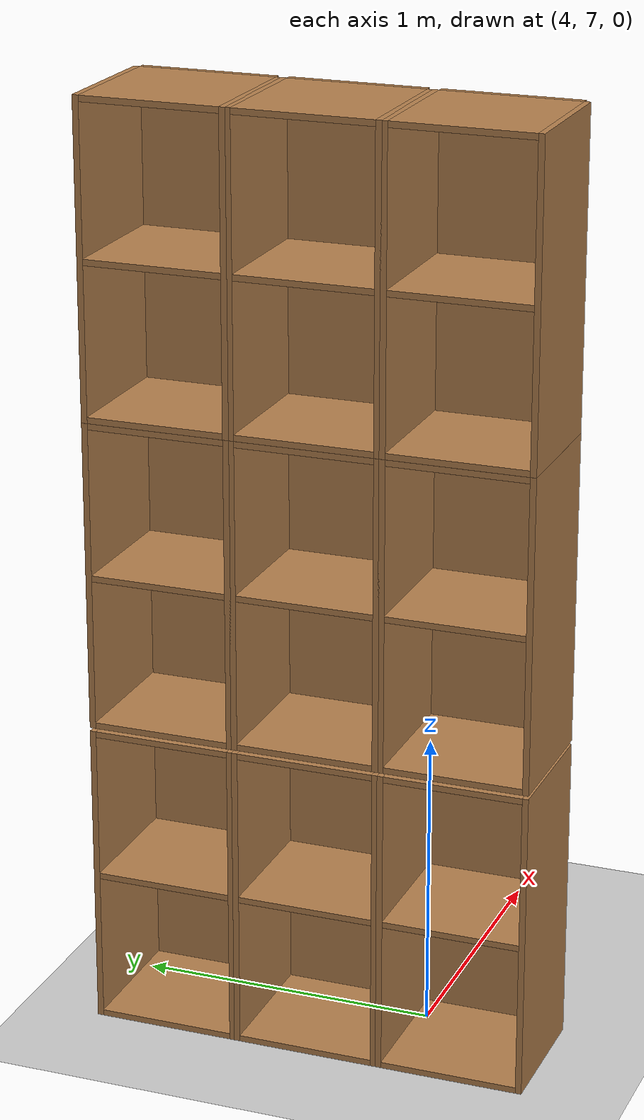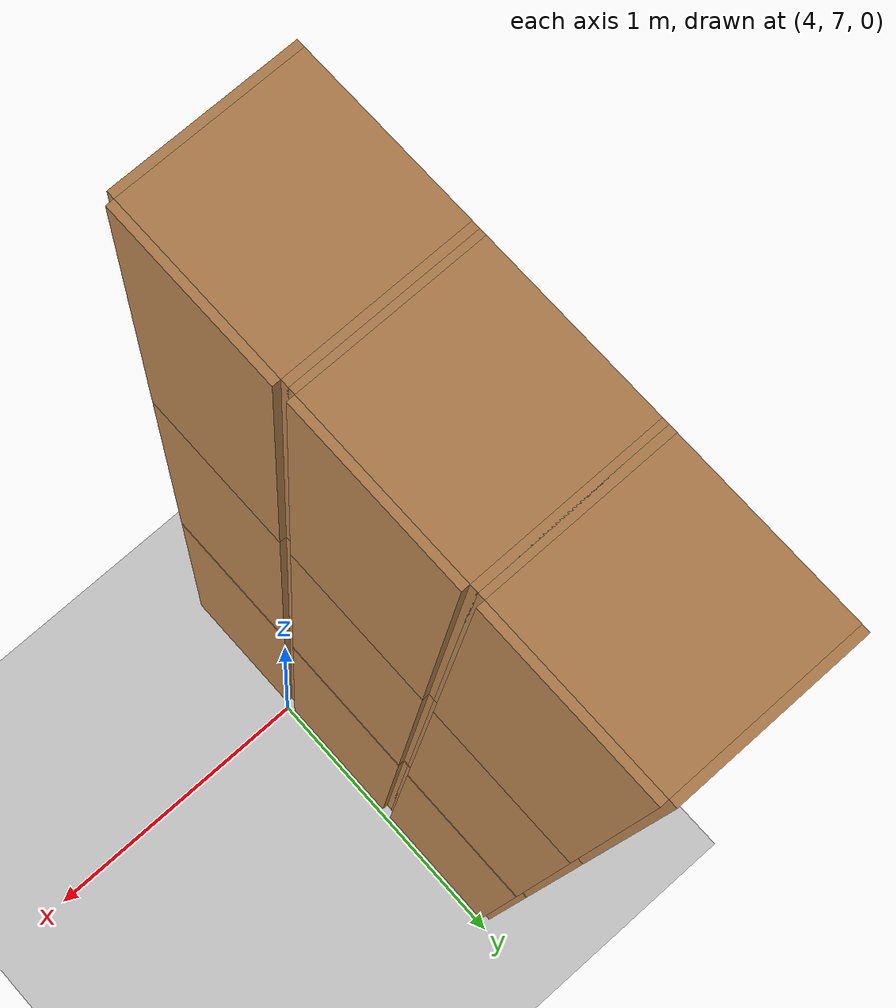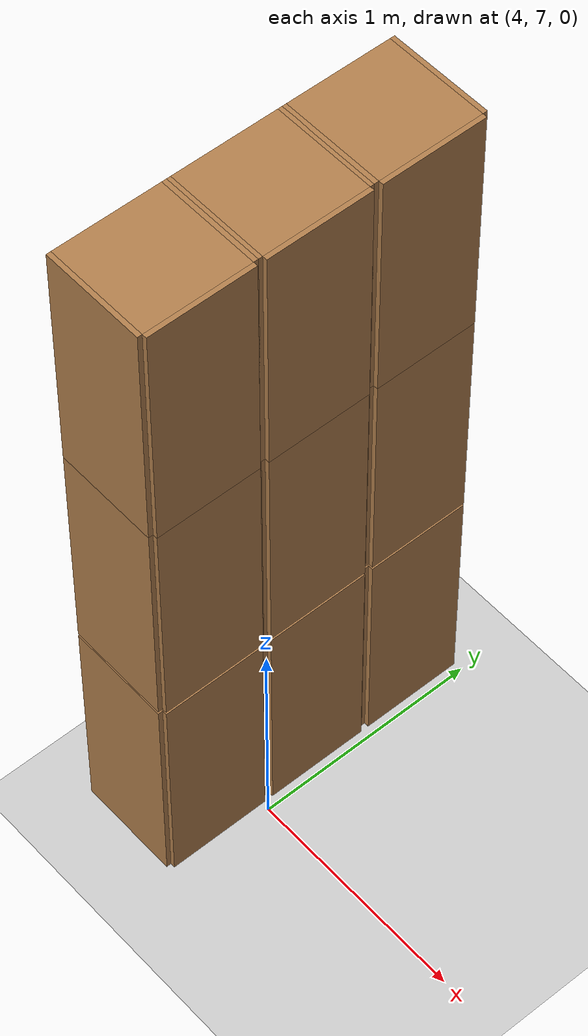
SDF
<sdf version="1.6">
 <world name="default">
  <model name="ground_plane">
   <static>1</static>
   <link name="link">
    <collision name="collision">
     <geometry><plane><normal>0 0 1</normal><size>100 100</size></plane></geometry>
     <surface>
      <contact><collide_bitmask>65535</collide_bitmask></contact>
      <friction><ode><mu>100</mu><mu2>50</mu2></ode></friction>
     </surface>
    </collision>
    <visual name="visual">
     <cast_shadows>0</cast_shadows>
     <geometry><plane><normal>0 0 1</normal><size>100 100</size></plane></geometry>
     <material>
      <script><uri>file://media/materials/scripts/gazebo.material</uri><name>Gazebo/Grey</name></script>
     </material>
    </visual>
   </link>
  </model>
  <model name="Locker18_clone_4_clone">
   <model name="Locker18">
    <model name="Locker3">
     <model name="cabinet">
      <static>1</static>
      <link name="cabinet_bottom_plate">
       <inertial>
        <pose>0 0 -1 0 -0 0</pose>
        <inertia><ixx>2.05</ixx><ixy>0</ixy><ixz>0</ixz><iyy>2.05</iyy><iyz>0</iyz><izz>2.05</izz></inertia>
        <mass>25</mass>
       </inertial>
       <collision name="cabinet_bottom_plate_geom">
        <pose>0 0 0.01 0 -0 0</pose>
        <geometry><box><size>0.45 0.45 0.02</size></box></geometry>
       </collision>
       <visual name="cabinet_bottom_plate_geom_visual">
        <pose>0 0 0.01 0 -0 0</pose>
        <geometry><box><size>0.45 0.45 0.02</size></box></geometry>
        <material>
         <script><uri>file://media/materials/scripts/gazebo.material</uri><name>Gazebo/Wood</name></script>
        </material>
       </visual>
       <collision name="cabinet_bottom_plate_geom_cabinet_back_plate">
        <pose>0.235 0 0.51 0 -0 0</pose>
        <geometry><box><size>0.02 0.45 1.02</size></box></geometry>
       </collision>
       <visual name="cabinet_bottom_plate_geom_cabinet_back_plate_visual">
        <pose>0.235 0 0.51 0 -0 0</pose>
        <geometry><box><size>0.02 0.45 1.02</size></box></geometry>
        <material>
         <script><uri>file://media/materials/scripts/gazebo.material</uri><name>Gazebo/Wood</name></script>
        </material>
       </visual>
       <collision name="cabinet_bottom_plate_geom_cabinet_left_plate">
        <pose>0 0.235 0.51 0 -0 0</pose>
        <geometry><box><size>0.45 0.02 1.02</size></box></geometry>
       </collision>
       <visual name="cabinet_bottom_plate_geom_cabinet_left_plate_visual">
        <pose>0 0.235 0.51 0 -0 0</pose>
        <geometry><box><size>0.45 0.02 1.02</size></box></geometry>
        <material>
         <script><uri>file://media/materials/scripts/gazebo.material</uri><name>Gazebo/Wood</name></script>
        </material>
       </visual>
       <collision name="cabinet_bottom_plate_geom_cabinet_middle_plate">
        <pose>0 0 0.51 0 -0 0</pose>
        <geometry><box><size>0.45 0.45 0.02</size></box></geometry>
       </collision>
       <visual name="cabinet_bottom_plate_geom_cabinet_middle_plate_visual">
        <pose>0 0 0.51 0 -0 0</pose>
        <geometry><box><size>0.45 0.45 0.02</size></box></geometry>
        <material>
         <script><uri>file://media/materials/scripts/gazebo.material</uri><name>Gazebo/Wood</name></script>
        </material>
       </visual>
       <collision name="cabinet_bottom_plate_geom_cabinet_right_plate">
        <pose>0 -0.235 0.51 0 -0 0</pose>
        <geometry><box><size>0.45 0.02 1.02</size></box></geometry>
       </collision>
       <visual name="cabinet_bottom_plate_geom_cabinet_right_plate_visual">
        <pose>0 -0.235 0.51 0 -0 0</pose>
        <geometry><box><size>0.45 0.02 1.02</size></box></geometry>
        <material>
         <script><uri>file://media/materials/scripts/gazebo.material</uri><name>Gazebo/Wood</name></script>
        </material>
       </visual>
       <collision name="cabinet_bottom_plate_geom_cabinet_top_plate">
        <pose>0 0 1.01 0 -0 0</pose>
        <geometry><box><size>0.45 0.45 0.02</size></box></geometry>
       </collision>
       <visual name="cabinet_bottom_plate_geom_cabinet_top_plate_visual">
        <pose>0 0 1.01 0 -0 0</pose>
        <geometry><box><size>0.45 0.45 0.02</size></box></geometry>
        <material>
         <script><uri>file://media/materials/scripts/gazebo.material</uri><name>Gazebo/Wood</name></script>
        </material>
       </visual>
      </link>
      <pose>-0.676968 1.45758 0 0 -0 0</pose>
     </model>
     <model name="cabinet_clone">
      <static>1</static>
      <link name="cabinet_bottom_plate">
       <inertial>
        <pose>0 0 -1 0 -0 0</pose>
        <inertia><ixx>2.05</ixx><ixy>0</ixy><ixz>0</ixz><iyy>2.05</iyy><iyz>0</iyz><izz>2.05</izz></inertia>
        <mass>25</mass>
       </inertial>
       <collision name="cabinet_bottom_plate_geom">
        <pose>0 0 0.01 0 -0 0</pose>
        <geometry><box><size>0.45 0.45 0.02</size></box></geometry>
       </collision>
       <visual name="cabinet_bottom_plate_geom_visual">
        <pose>0 0 0.01 0 -0 0</pose>
        <geometry><box><size>0.45 0.45 0.02</size></box></geometry>
        <material>
         <script><uri>file://media/materials/scripts/gazebo.material</uri><name>Gazebo/Wood</name></script>
        </material>
       </visual>
       <collision name="cabinet_bottom_plate_geom_cabinet_back_plate">
        <pose>0.235 0 0.51 0 -0 0</pose>
        <geometry><box><size>0.02 0.45 1.02</size></box></geometry>
       </collision>
       <visual name="cabinet_bottom_plate_geom_cabinet_back_plate_visual">
        <pose>0.235 0 0.51 0 -0 0</pose>
        <geometry><box><size>0.02 0.45 1.02</size></box></geometry>
        <material>
         <script><uri>file://media/materials/scripts/gazebo.material</uri><name>Gazebo/Wood</name></script>
        </material>
       </visual>
       <collision name="cabinet_bottom_plate_geom_cabinet_left_plate">
        <pose>0 0.235 0.51 0 -0 0</pose>
        <geometry><box><size>0.45 0.02 1.02</size></box></geometry>
       </collision>
       <visual name="cabinet_bottom_plate_geom_cabinet_left_plate_visual">
        <pose>0 0.235 0.51 0 -0 0</pose>
        <geometry><box><size>0.45 0.02 1.02</size></box></geometry>
        <material>
         <script><uri>file://media/materials/scripts/gazebo.material</uri><name>Gazebo/Wood</name></script>
        </material>
       </visual>
       <collision name="cabinet_bottom_plate_geom_cabinet_middle_plate">
        <pose>0 0 0.51 0 -0 0</pose>
        <geometry><box><size>0.45 0.45 0.02</size></box></geometry>
       </collision>
       <visual name="cabinet_bottom_plate_geom_cabinet_middle_plate_visual">
        <pose>0 0 0.51 0 -0 0</pose>
        <geometry><box><size>0.45 0.45 0.02</size></box></geometry>
        <material>
         <script><uri>file://media/materials/scripts/gazebo.material</uri><name>Gazebo/Wood</name></script>
        </material>
       </visual>
       <collision name="cabinet_bottom_plate_geom_cabinet_right_plate">
        <pose>0 -0.235 0.51 0 -0 0</pose>
        <geometry><box><size>0.45 0.02 1.02</size></box></geometry>
       </collision>
       <visual name="cabinet_bottom_plate_geom_cabinet_right_plate_visual">
        <pose>0 -0.235 0.51 0 -0 0</pose>
        <geometry><box><size>0.45 0.02 1.02</size></box></geometry>
        <material>
         <script><uri>file://media/materials/scripts/gazebo.material</uri><name>Gazebo/Wood</name></script>
        </material>
       </visual>
       <collision name="cabinet_bottom_plate_geom_cabinet_top_plate">
        <pose>0 0 1.01 0 -0 0</pose>
        <geometry><box><size>0.45 0.45 0.02</size></box></geometry>
       </collision>
       <visual name="cabinet_bottom_plate_geom_cabinet_top_plate_visual">
        <pose>0 0 1.01 0 -0 0</pose>
        <geometry><box><size>0.45 0.45 0.02</size></box></geometry>
        <material>
         <script><uri>file://media/materials/scripts/gazebo.material</uri><name>Gazebo/Wood</name></script>
        </material>
       </visual>
      </link>
      <pose>-0.676968 0.970971 0 0 -0 0</pose>
     </model>
     <model name="cabinet_clone_0">
      <static>1</static>
      <link name="cabinet_bottom_plate">
       <inertial>
        <pose>0 0 -1 0 -0 0</pose>
        <inertia><ixx>2.05</ixx><ixy>0</ixy><ixz>0</ixz><iyy>2.05</iyy><iyz>0</iyz><izz>2.05</izz></inertia>
        <mass>25</mass>
       </inertial>
       <collision name="cabinet_bottom_plate_geom">
        <pose>0 0 0.01 0 -0 0</pose>
        <geometry><box><size>0.45 0.45 0.02</size></box></geometry>
       </collision>
       <visual name="cabinet_bottom_plate_geom_visual">
        <pose>0 0 0.01 0 -0 0</pose>
        <geometry><box><size>0.45 0.45 0.02</size></box></geometry>
        <material>
         <script><uri>file://media/materials/scripts/gazebo.material</uri><name>Gazebo/Wood</name></script>
        </material>
       </visual>
       <collision name="cabinet_bottom_plate_geom_cabinet_back_plate">
        <pose>0.235 0 0.51 0 -0 0</pose>
        <geometry><box><size>0.02 0.45 1.02</size></box></geometry>
       </collision>
       <visual name="cabinet_bottom_plate_geom_cabinet_back_plate_visual">
        <pose>0.235 0 0.51 0 -0 0</pose>
        <geometry><box><size>0.02 0.45 1.02</size></box></geometry>
        <material>
         <script><uri>file://media/materials/scripts/gazebo.material</uri><name>Gazebo/Wood</name></script>
        </material>
       </visual>
       <collision name="cabinet_bottom_plate_geom_cabinet_left_plate">
        <pose>0 0.235 0.51 0 -0 0</pose>
        <geometry><box><size>0.45 0.02 1.02</size></box></geometry>
       </collision>
       <visual name="cabinet_bottom_plate_geom_cabinet_left_plate_visual">
        <pose>0 0.235 0.51 0 -0 0</pose>
        <geometry><box><size>0.45 0.02 1.02</size></box></geometry>
        <material>
         <script><uri>file://media/materials/scripts/gazebo.material</uri><name>Gazebo/Wood</name></script>
        </material>
       </visual>
       <collision name="cabinet_bottom_plate_geom_cabinet_middle_plate">
        <pose>0 0 0.51 0 -0 0</pose>
        <geometry><box><size>0.45 0.45 0.02</size></box></geometry>
       </collision>
       <visual name="cabinet_bottom_plate_geom_cabinet_middle_plate_visual">
        <pose>0 0 0.51 0 -0 0</pose>
        <geometry><box><size>0.45 0.45 0.02</size></box></geometry>
        <material>
         <script><uri>file://media/materials/scripts/gazebo.material</uri><name>Gazebo/Wood</name></script>
        </material>
       </visual>
       <collision name="cabinet_bottom_plate_geom_cabinet_right_plate">
        <pose>0 -0.235 0.51 0 -0 0</pose>
        <geometry><box><size>0.45 0.02 1.02</size></box></geometry>
       </collision>
       <visual name="cabinet_bottom_plate_geom_cabinet_right_plate_visual">
        <pose>0 -0.235 0.51 0 -0 0</pose>
        <geometry><box><size>0.45 0.02 1.02</size></box></geometry>
        <material>
         <script><uri>file://media/materials/scripts/gazebo.material</uri><name>Gazebo/Wood</name></script>
        </material>
       </visual>
       <collision name="cabinet_bottom_plate_geom_cabinet_top_plate">
        <pose>0 0 1.01 0 -0 0</pose>
        <geometry><box><size>0.45 0.45 0.02</size></box></geometry>
       </collision>
       <visual name="cabinet_bottom_plate_geom_cabinet_top_plate_visual">
        <pose>0 0 1.01 0 -0 0</pose>
        <geometry><box><size>0.45 0.45 0.02</size></box></geometry>
        <material>
         <script><uri>file://media/materials/scripts/gazebo.material</uri><name>Gazebo/Wood</name></script>
        </material>
       </visual>
      </link>
      <pose>-0.676968 0.48391 0 0 -0 0</pose>
     </model>
     <static>0</static>
     <pose>0 3e-06 -1.02763 0 -0 0</pose>
    </model>
    <model name="Locker3_clone">
     <model name="cabinet">
      <static>1</static>
      <link name="cabinet_bottom_plate">
       <inertial>
        <pose>0 0 -1 0 -0 0</pose>
        <inertia><ixx>2.05</ixx><ixy>0</ixy><ixz>0</ixz><iyy>2.05</iyy><iyz>0</iyz><izz>2.05</izz></inertia>
        <mass>25</mass>
       </inertial>
       <collision name="cabinet_bottom_plate_geom">
        <pose>0 0 0.01 0 -0 0</pose>
        <geometry><box><size>0.45 0.45 0.02</size></box></geometry>
       </collision>
       <visual name="cabinet_bottom_plate_geom_visual">
        <pose>0 0 0.01 0 -0 0</pose>
        <geometry><box><size>0.45 0.45 0.02</size></box></geometry>
        <material>
         <script><uri>file://media/materials/scripts/gazebo.material</uri><name>Gazebo/Wood</name></script>
        </material>
       </visual>
       <collision name="cabinet_bottom_plate_geom_cabinet_back_plate">
        <pose>0.235 0 0.51 0 -0 0</pose>
        <geometry><box><size>0.02 0.45 1.02</size></box></geometry>
       </collision>
       <visual name="cabinet_bottom_plate_geom_cabinet_back_plate_visual">
        <pose>0.235 0 0.51 0 -0 0</pose>
        <geometry><box><size>0.02 0.45 1.02</size></box></geometry>
        <material>
         <script><uri>file://media/materials/scripts/gazebo.material</uri><name>Gazebo/Wood</name></script>
        </material>
       </visual>
       <collision name="cabinet_bottom_plate_geom_cabinet_left_plate">
        <pose>0 0.235 0.51 0 -0 0</pose>
        <geometry><box><size>0.45 0.02 1.02</size></box></geometry>
       </collision>
       <visual name="cabinet_bottom_plate_geom_cabinet_left_plate_visual">
        <pose>0 0.235 0.51 0 -0 0</pose>
        <geometry><box><size>0.45 0.02 1.02</size></box></geometry>
        <material>
         <script><uri>file://media/materials/scripts/gazebo.material</uri><name>Gazebo/Wood</name></script>
        </material>
       </visual>
       <collision name="cabinet_bottom_plate_geom_cabinet_middle_plate">
        <pose>0 0 0.51 0 -0 0</pose>
        <geometry><box><size>0.45 0.45 0.02</size></box></geometry>
       </collision>
       <visual name="cabinet_bottom_plate_geom_cabinet_middle_plate_visual">
        <pose>0 0 0.51 0 -0 0</pose>
        <geometry><box><size>0.45 0.45 0.02</size></box></geometry>
        <material>
         <script><uri>file://media/materials/scripts/gazebo.material</uri><name>Gazebo/Wood</name></script>
        </material>
       </visual>
       <collision name="cabinet_bottom_plate_geom_cabinet_right_plate">
        <pose>0 -0.235 0.51 0 -0 0</pose>
        <geometry><box><size>0.45 0.02 1.02</size></box></geometry>
       </collision>
       <visual name="cabinet_bottom_plate_geom_cabinet_right_plate_visual">
        <pose>0 -0.235 0.51 0 -0 0</pose>
        <geometry><box><size>0.45 0.02 1.02</size></box></geometry>
        <material>
         <script><uri>file://media/materials/scripts/gazebo.material</uri><name>Gazebo/Wood</name></script>
        </material>
       </visual>
       <collision name="cabinet_bottom_plate_geom_cabinet_top_plate">
        <pose>0 0 1.01 0 -0 0</pose>
        <geometry><box><size>0.45 0.45 0.02</size></box></geometry>
       </collision>
       <visual name="cabinet_bottom_plate_geom_cabinet_top_plate_visual">
        <pose>0 0 1.01 0 -0 0</pose>
        <geometry><box><size>0.45 0.45 0.02</size></box></geometry>
        <material>
         <script><uri>file://media/materials/scripts/gazebo.material</uri><name>Gazebo/Wood</name></script>
        </material>
       </visual>
      </link>
      <pose>-0.676968 1.45758 0 0 -0 0</pose>
     </model>
     <model name="cabinet_clone">
      <static>1</static>
      <link name="cabinet_bottom_plate">
       <inertial>
        <pose>0 0 -1 0 -0 0</pose>
        <inertia><ixx>2.05</ixx><ixy>0</ixy><ixz>0</ixz><iyy>2.05</iyy><iyz>0</iyz><izz>2.05</izz></inertia>
        <mass>25</mass>
       </inertial>
       <collision name="cabinet_bottom_plate_geom">
        <pose>0 0 0.01 0 -0 0</pose>
        <geometry><box><size>0.45 0.45 0.02</size></box></geometry>
       </collision>
       <visual name="cabinet_bottom_plate_geom_visual">
        <pose>0 0 0.01 0 -0 0</pose>
        <geometry><box><size>0.45 0.45 0.02</size></box></geometry>
        <material>
         <script><uri>file://media/materials/scripts/gazebo.material</uri><name>Gazebo/Wood</name></script>
        </material>
       </visual>
       <collision name="cabinet_bottom_plate_geom_cabinet_back_plate">
        <pose>0.235 0 0.51 0 -0 0</pose>
        <geometry><box><size>0.02 0.45 1.02</size></box></geometry>
       </collision>
       <visual name="cabinet_bottom_plate_geom_cabinet_back_plate_visual">
        <pose>0.235 0 0.51 0 -0 0</pose>
        <geometry><box><size>0.02 0.45 1.02</size></box></geometry>
        <material>
         <script><uri>file://media/materials/scripts/gazebo.material</uri><name>Gazebo/Wood</name></script>
        </material>
       </visual>
       <collision name="cabinet_bottom_plate_geom_cabinet_left_plate">
        <pose>0 0.235 0.51 0 -0 0</pose>
        <geometry><box><size>0.45 0.02 1.02</size></box></geometry>
       </collision>
       <visual name="cabinet_bottom_plate_geom_cabinet_left_plate_visual">
        <pose>0 0.235 0.51 0 -0 0</pose>
        <geometry><box><size>0.45 0.02 1.02</size></box></geometry>
        <material>
         <script><uri>file://media/materials/scripts/gazebo.material</uri><name>Gazebo/Wood</name></script>
        </material>
       </visual>
       <collision name="cabinet_bottom_plate_geom_cabinet_middle_plate">
        <pose>0 0 0.51 0 -0 0</pose>
        <geometry><box><size>0.45 0.45 0.02</size></box></geometry>
       </collision>
       <visual name="cabinet_bottom_plate_geom_cabinet_middle_plate_visual">
        <pose>0 0 0.51 0 -0 0</pose>
        <geometry><box><size>0.45 0.45 0.02</size></box></geometry>
        <material>
         <script><uri>file://media/materials/scripts/gazebo.material</uri><name>Gazebo/Wood</name></script>
        </material>
       </visual>
       <collision name="cabinet_bottom_plate_geom_cabinet_right_plate">
        <pose>0 -0.235 0.51 0 -0 0</pose>
        <geometry><box><size>0.45 0.02 1.02</size></box></geometry>
       </collision>
       <visual name="cabinet_bottom_plate_geom_cabinet_right_plate_visual">
        <pose>0 -0.235 0.51 0 -0 0</pose>
        <geometry><box><size>0.45 0.02 1.02</size></box></geometry>
        <material>
         <script><uri>file://media/materials/scripts/gazebo.material</uri><name>Gazebo/Wood</name></script>
        </material>
       </visual>
       <collision name="cabinet_bottom_plate_geom_cabinet_top_plate">
        <pose>0 0 1.01 0 -0 0</pose>
        <geometry><box><size>0.45 0.45 0.02</size></box></geometry>
       </collision>
       <visual name="cabinet_bottom_plate_geom_cabinet_top_plate_visual">
        <pose>0 0 1.01 0 -0 0</pose>
        <geometry><box><size>0.45 0.45 0.02</size></box></geometry>
        <material>
         <script><uri>file://media/materials/scripts/gazebo.material</uri><name>Gazebo/Wood</name></script>
        </material>
       </visual>
      </link>
      <pose>-0.676968 0.970971 0 0 -0 0</pose>
     </model>
     <model name="cabinet_clone_0">
      <static>1</static>
      <link name="cabinet_bottom_plate">
       <inertial>
        <pose>0 0 -1 0 -0 0</pose>
        <inertia><ixx>2.05</ixx><ixy>0</ixy><ixz>0</ixz><iyy>2.05</iyy><iyz>0</iyz><izz>2.05</izz></inertia>
        <mass>25</mass>
       </inertial>
       <collision name="cabinet_bottom_plate_geom">
        <pose>0 0 0.01 0 -0 0</pose>
        <geometry><box><size>0.45 0.45 0.02</size></box></geometry>
       </collision>
       <visual name="cabinet_bottom_plate_geom_visual">
        <pose>0 0 0.01 0 -0 0</pose>
        <geometry><box><size>0.45 0.45 0.02</size></box></geometry>
        <material>
         <script><uri>file://media/materials/scripts/gazebo.material</uri><name>Gazebo/Wood</name></script>
        </material>
       </visual>
       <collision name="cabinet_bottom_plate_geom_cabinet_back_plate">
        <pose>0.235 0 0.51 0 -0 0</pose>
        <geometry><box><size>0.02 0.45 1.02</size></box></geometry>
       </collision>
       <visual name="cabinet_bottom_plate_geom_cabinet_back_plate_visual">
        <pose>0.235 0 0.51 0 -0 0</pose>
        <geometry><box><size>0.02 0.45 1.02</size></box></geometry>
        <material>
         <script><uri>file://media/materials/scripts/gazebo.material</uri><name>Gazebo/Wood</name></script>
        </material>
       </visual>
       <collision name="cabinet_bottom_plate_geom_cabinet_left_plate">
        <pose>0 0.235 0.51 0 -0 0</pose>
        <geometry><box><size>0.45 0.02 1.02</size></box></geometry>
       </collision>
       <visual name="cabinet_bottom_plate_geom_cabinet_left_plate_visual">
        <pose>0 0.235 0.51 0 -0 0</pose>
        <geometry><box><size>0.45 0.02 1.02</size></box></geometry>
        <material>
         <script><uri>file://media/materials/scripts/gazebo.material</uri><name>Gazebo/Wood</name></script>
        </material>
       </visual>
       <collision name="cabinet_bottom_plate_geom_cabinet_middle_plate">
        <pose>0 0 0.51 0 -0 0</pose>
        <geometry><box><size>0.45 0.45 0.02</size></box></geometry>
       </collision>
       <visual name="cabinet_bottom_plate_geom_cabinet_middle_plate_visual">
        <pose>0 0 0.51 0 -0 0</pose>
        <geometry><box><size>0.45 0.45 0.02</size></box></geometry>
        <material>
         <script><uri>file://media/materials/scripts/gazebo.material</uri><name>Gazebo/Wood</name></script>
        </material>
       </visual>
       <collision name="cabinet_bottom_plate_geom_cabinet_right_plate">
        <pose>0 -0.235 0.51 0 -0 0</pose>
        <geometry><box><size>0.45 0.02 1.02</size></box></geometry>
       </collision>
       <visual name="cabinet_bottom_plate_geom_cabinet_right_plate_visual">
        <pose>0 -0.235 0.51 0 -0 0</pose>
        <geometry><box><size>0.45 0.02 1.02</size></box></geometry>
        <material>
         <script><uri>file://media/materials/scripts/gazebo.material</uri><name>Gazebo/Wood</name></script>
        </material>
       </visual>
       <collision name="cabinet_bottom_plate_geom_cabinet_top_plate">
        <pose>0 0 1.01 0 -0 0</pose>
        <geometry><box><size>0.45 0.45 0.02</size></box></geometry>
       </collision>
       <visual name="cabinet_bottom_plate_geom_cabinet_top_plate_visual">
        <pose>0 0 1.01 0 -0 0</pose>
        <geometry><box><size>0.45 0.45 0.02</size></box></geometry>
        <material>
         <script><uri>file://media/materials/scripts/gazebo.material</uri><name>Gazebo/Wood</name></script>
        </material>
       </visual>
      </link>
      <pose>-0.676968 0.48391 0 0 -0 0</pose>
     </model>
     <static>0</static>
     <pose>0 3e-06 0.003717 0 -0 0</pose>
    </model>
    <model name="Locker3_clone_clone">
     <model name="cabinet">
      <static>1</static>
      <link name="cabinet_bottom_plate">
       <inertial>
        <pose>0 0 -1 0 -0 0</pose>
        <inertia><ixx>2.05</ixx><ixy>0</ixy><ixz>0</ixz><iyy>2.05</iyy><iyz>0</iyz><izz>2.05</izz></inertia>
        <mass>25</mass>
       </inertial>
       <collision name="cabinet_bottom_plate_geom">
        <pose>0 0 0.01 0 -0 0</pose>
        <geometry><box><size>0.45 0.45 0.02</size></box></geometry>
       </collision>
       <visual name="cabinet_bottom_plate_geom_visual">
        <pose>0 0 0.01 0 -0 0</pose>
        <geometry><box><size>0.45 0.45 0.02</size></box></geometry>
        <material>
         <script><uri>file://media/materials/scripts/gazebo.material</uri><name>Gazebo/Wood</name></script>
        </material>
       </visual>
       <collision name="cabinet_bottom_plate_geom_cabinet_back_plate">
        <pose>0.235 0 0.51 0 -0 0</pose>
        <geometry><box><size>0.02 0.45 1.02</size></box></geometry>
       </collision>
       <visual name="cabinet_bottom_plate_geom_cabinet_back_plate_visual">
        <pose>0.235 0 0.51 0 -0 0</pose>
        <geometry><box><size>0.02 0.45 1.02</size></box></geometry>
        <material>
         <script><uri>file://media/materials/scripts/gazebo.material</uri><name>Gazebo/Wood</name></script>
        </material>
       </visual>
       <collision name="cabinet_bottom_plate_geom_cabinet_left_plate">
        <pose>0 0.235 0.51 0 -0 0</pose>
        <geometry><box><size>0.45 0.02 1.02</size></box></geometry>
       </collision>
       <visual name="cabinet_bottom_plate_geom_cabinet_left_plate_visual">
        <pose>0 0.235 0.51 0 -0 0</pose>
        <geometry><box><size>0.45 0.02 1.02</size></box></geometry>
        <material>
         <script><uri>file://media/materials/scripts/gazebo.material</uri><name>Gazebo/Wood</name></script>
        </material>
       </visual>
       <collision name="cabinet_bottom_plate_geom_cabinet_middle_plate">
        <pose>0 0 0.51 0 -0 0</pose>
        <geometry><box><size>0.45 0.45 0.02</size></box></geometry>
       </collision>
       <visual name="cabinet_bottom_plate_geom_cabinet_middle_plate_visual">
        <pose>0 0 0.51 0 -0 0</pose>
        <geometry><box><size>0.45 0.45 0.02</size></box></geometry>
        <material>
         <script><uri>file://media/materials/scripts/gazebo.material</uri><name>Gazebo/Wood</name></script>
        </material>
       </visual>
       <collision name="cabinet_bottom_plate_geom_cabinet_right_plate">
        <pose>0 -0.235 0.51 0 -0 0</pose>
        <geometry><box><size>0.45 0.02 1.02</size></box></geometry>
       </collision>
       <visual name="cabinet_bottom_plate_geom_cabinet_right_plate_visual">
        <pose>0 -0.235 0.51 0 -0 0</pose>
        <geometry><box><size>0.45 0.02 1.02</size></box></geometry>
        <material>
         <script><uri>file://media/materials/scripts/gazebo.material</uri><name>Gazebo/Wood</name></script>
        </material>
       </visual>
       <collision name="cabinet_bottom_plate_geom_cabinet_top_plate">
        <pose>0 0 1.01 0 -0 0</pose>
        <geometry><box><size>0.45 0.45 0.02</size></box></geometry>
       </collision>
       <visual name="cabinet_bottom_plate_geom_cabinet_top_plate_visual">
        <pose>0 0 1.01 0 -0 0</pose>
        <geometry><box><size>0.45 0.45 0.02</size></box></geometry>
        <material>
         <script><uri>file://media/materials/scripts/gazebo.material</uri><name>Gazebo/Wood</name></script>
        </material>
       </visual>
      </link>
      <pose>-0.676968 1.45758 0 0 -0 0</pose>
     </model>
     <model name="cabinet_clone">
      <static>1</static>
      <link name="cabinet_bottom_plate">
       <inertial>
        <pose>0 0 -1 0 -0 0</pose>
        <inertia><ixx>2.05</ixx><ixy>0</ixy><ixz>0</ixz><iyy>2.05</iyy><iyz>0</iyz><izz>2.05</izz></inertia>
        <mass>25</mass>
       </inertial>
       <collision name="cabinet_bottom_plate_geom">
        <pose>0 0 0.01 0 -0 0</pose>
        <geometry><box><size>0.45 0.45 0.02</size></box></geometry>
       </collision>
       <visual name="cabinet_bottom_plate_geom_visual">
        <pose>0 0 0.01 0 -0 0</pose>
        <geometry><box><size>0.45 0.45 0.02</size></box></geometry>
        <material>
         <script><uri>file://media/materials/scripts/gazebo.material</uri><name>Gazebo/Wood</name></script>
        </material>
       </visual>
       <collision name="cabinet_bottom_plate_geom_cabinet_back_plate">
        <pose>0.235 0 0.51 0 -0 0</pose>
        <geometry><box><size>0.02 0.45 1.02</size></box></geometry>
       </collision>
       <visual name="cabinet_bottom_plate_geom_cabinet_back_plate_visual">
        <pose>0.235 0 0.51 0 -0 0</pose>
        <geometry><box><size>0.02 0.45 1.02</size></box></geometry>
        <material>
         <script><uri>file://media/materials/scripts/gazebo.material</uri><name>Gazebo/Wood</name></script>
        </material>
       </visual>
       <collision name="cabinet_bottom_plate_geom_cabinet_left_plate">
        <pose>0 0.235 0.51 0 -0 0</pose>
        <geometry><box><size>0.45 0.02 1.02</size></box></geometry>
       </collision>
       <visual name="cabinet_bottom_plate_geom_cabinet_left_plate_visual">
        <pose>0 0.235 0.51 0 -0 0</pose>
        <geometry><box><size>0.45 0.02 1.02</size></box></geometry>
        <material>
         <script><uri>file://media/materials/scripts/gazebo.material</uri><name>Gazebo/Wood</name></script>
        </material>
       </visual>
       <collision name="cabinet_bottom_plate_geom_cabinet_middle_plate">
        <pose>0 0 0.51 0 -0 0</pose>
        <geometry><box><size>0.45 0.45 0.02</size></box></geometry>
       </collision>
       <visual name="cabinet_bottom_plate_geom_cabinet_middle_plate_visual">
        <pose>0 0 0.51 0 -0 0</pose>
        <geometry><box><size>0.45 0.45 0.02</size></box></geometry>
        <material>
         <script><uri>file://media/materials/scripts/gazebo.material</uri><name>Gazebo/Wood</name></script>
        </material>
       </visual>
       <collision name="cabinet_bottom_plate_geom_cabinet_right_plate">
        <pose>0 -0.235 0.51 0 -0 0</pose>
        <geometry><box><size>0.45 0.02 1.02</size></box></geometry>
       </collision>
       <visual name="cabinet_bottom_plate_geom_cabinet_right_plate_visual">
        <pose>0 -0.235 0.51 0 -0 0</pose>
        <geometry><box><size>0.45 0.02 1.02</size></box></geometry>
        <material>
         <script><uri>file://media/materials/scripts/gazebo.material</uri><name>Gazebo/Wood</name></script>
        </material>
       </visual>
       <collision name="cabinet_bottom_plate_geom_cabinet_top_plate">
        <pose>0 0 1.01 0 -0 0</pose>
        <geometry><box><size>0.45 0.45 0.02</size></box></geometry>
       </collision>
       <visual name="cabinet_bottom_plate_geom_cabinet_top_plate_visual">
        <pose>0 0 1.01 0 -0 0</pose>
        <geometry><box><size>0.45 0.45 0.02</size></box></geometry>
        <material>
         <script><uri>file://media/materials/scripts/gazebo.material</uri><name>Gazebo/Wood</name></script>
        </material>
       </visual>
      </link>
      <pose>-0.676968 0.970971 0 0 -0 0</pose>
     </model>
     <model name="cabinet_clone_0">
      <static>1</static>
      <link name="cabinet_bottom_plate">
       <inertial>
        <pose>0 0 -1 0 -0 0</pose>
        <inertia><ixx>2.05</ixx><ixy>0</ixy><ixz>0</ixz><iyy>2.05</iyy><iyz>0</iyz><izz>2.05</izz></inertia>
        <mass>25</mass>
       </inertial>
       <collision name="cabinet_bottom_plate_geom">
        <pose>0 0 0.01 0 -0 0</pose>
        <geometry><box><size>0.45 0.45 0.02</size></box></geometry>
       </collision>
       <visual name="cabinet_bottom_plate_geom_visual">
        <pose>0 0 0.01 0 -0 0</pose>
        <geometry><box><size>0.45 0.45 0.02</size></box></geometry>
        <material>
         <script><uri>file://media/materials/scripts/gazebo.material</uri><name>Gazebo/Wood</name></script>
        </material>
       </visual>
       <collision name="cabinet_bottom_plate_geom_cabinet_back_plate">
        <pose>0.235 0 0.51 0 -0 0</pose>
        <geometry><box><size>0.02 0.45 1.02</size></box></geometry>
       </collision>
       <visual name="cabinet_bottom_plate_geom_cabinet_back_plate_visual">
        <pose>0.235 0 0.51 0 -0 0</pose>
        <geometry><box><size>0.02 0.45 1.02</size></box></geometry>
        <material>
         <script><uri>file://media/materials/scripts/gazebo.material</uri><name>Gazebo/Wood</name></script>
        </material>
       </visual>
       <collision name="cabinet_bottom_plate_geom_cabinet_left_plate">
        <pose>0 0.235 0.51 0 -0 0</pose>
        <geometry><box><size>0.45 0.02 1.02</size></box></geometry>
       </collision>
       <visual name="cabinet_bottom_plate_geom_cabinet_left_plate_visual">
        <pose>0 0.235 0.51 0 -0 0</pose>
        <geometry><box><size>0.45 0.02 1.02</size></box></geometry>
        <material>
         <script><uri>file://media/materials/scripts/gazebo.material</uri><name>Gazebo/Wood</name></script>
        </material>
       </visual>
       <collision name="cabinet_bottom_plate_geom_cabinet_middle_plate">
        <pose>0 0 0.51 0 -0 0</pose>
        <geometry><box><size>0.45 0.45 0.02</size></box></geometry>
       </collision>
       <visual name="cabinet_bottom_plate_geom_cabinet_middle_plate_visual">
        <pose>0 0 0.51 0 -0 0</pose>
        <geometry><box><size>0.45 0.45 0.02</size></box></geometry>
        <material>
         <script><uri>file://media/materials/scripts/gazebo.material</uri><name>Gazebo/Wood</name></script>
        </material>
       </visual>
       <collision name="cabinet_bottom_plate_geom_cabinet_right_plate">
        <pose>0 -0.235 0.51 0 -0 0</pose>
        <geometry><box><size>0.45 0.02 1.02</size></box></geometry>
       </collision>
       <visual name="cabinet_bottom_plate_geom_cabinet_right_plate_visual">
        <pose>0 -0.235 0.51 0 -0 0</pose>
        <geometry><box><size>0.45 0.02 1.02</size></box></geometry>
        <material>
         <script><uri>file://media/materials/scripts/gazebo.material</uri><name>Gazebo/Wood</name></script>
        </material>
       </visual>
       <collision name="cabinet_bottom_plate_geom_cabinet_top_plate">
        <pose>0 0 1.01 0 -0 0</pose>
        <geometry><box><size>0.45 0.45 0.02</size></box></geometry>
       </collision>
       <visual name="cabinet_bottom_plate_geom_cabinet_top_plate_visual">
        <pose>0 0 1.01 0 -0 0</pose>
        <geometry><box><size>0.45 0.45 0.02</size></box></geometry>
        <material>
         <script><uri>file://media/materials/scripts/gazebo.material</uri><name>Gazebo/Wood</name></script>
        </material>
       </visual>
      </link>
      <pose>-0.676968 0.48391 0 0 -0 0</pose>
     </model>
     <static>0</static>
     <pose>0 3e-06 1.02391 0 -0 0</pose>
    </model>
    <static>0</static>
    <pose>-0 4e-06 4e-06 0 -0 0</pose>
   </model>
   <static>0</static>
   <pose>4.42561 6.28177 1.08672 0 -0 0</pose>
  </model>
 </world>
</sdf>
